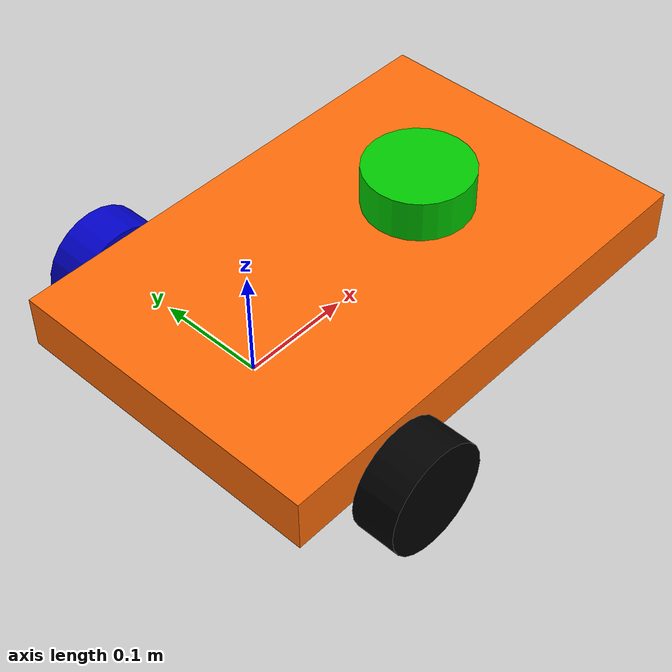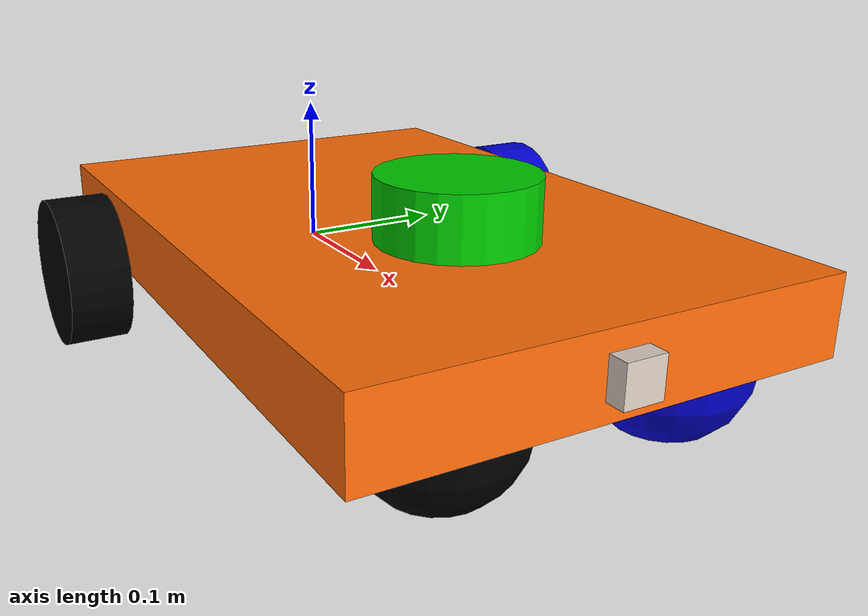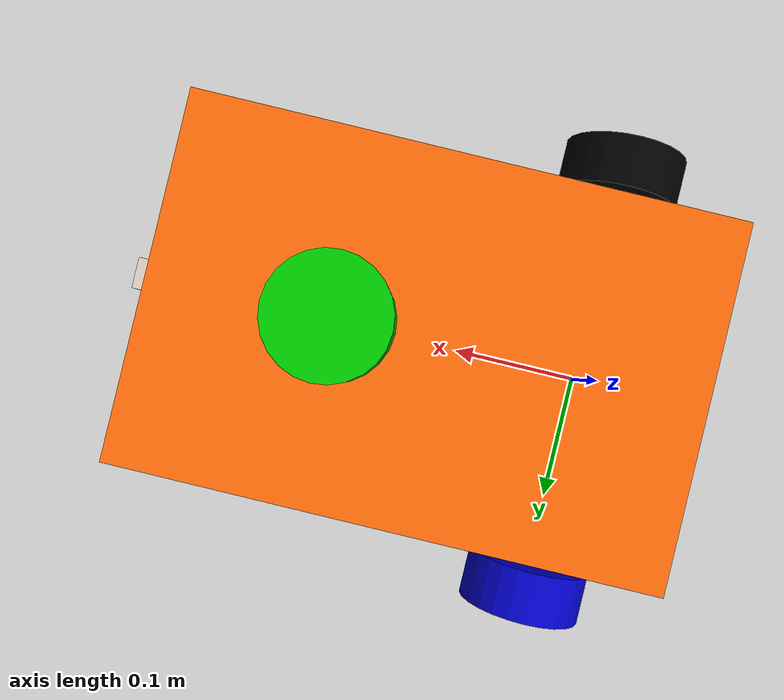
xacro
<?xml version="1.0"?>
<robot xmlns:xacro="http://www.ros.org/wiki/xacro"  name="nav_bot">

    <!-- Robot Structure-->
    <xacro:include filename="structure.xacro"/>

    <!-- Ros2 Control -->
    <xacro:include filename="ros2_control.xacro"/>

    <!-- Lidar-->
    <xacro:include filename="lidar.xacro"/>

    <!-- Camera -->
    <xacro:include filename="camera.xacro"/>

    <!-- Depth Camera -->
    <xacro:include filename="depth_camera.xacro"/>

</robot>

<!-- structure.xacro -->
<robot xmlns:xacro="http://www.ros.org/wiki/xacro">

    <xacro:include filename="macro_inertia.xacro"/>

    <!-- Colors -->

    <material name="black">
        <color rgba="0.0 0.0 0.0 1.0"/>
    </material>

    <material name="dark">
        <color rgba="0.3 0.3 0.3 1.0"/>
    </material>
    <material name="light_black">
        <color rgba="0.4 0.4 0.4 1.0"/>
    </material>

    <material name="blue">
        <color rgba="0.0 0.0 0.8 1.0"/>
    </material>

    <material name="green">
        <color rgba="0.0 0.8 0.0 1.0"/>
    </material>

    <material name="grey">
        <color rgba="0.5 0.5 0.5 1.0"/>
    </material>

    <material name="orange">
        <color rgba="${255/255} ${108/255} ${10/255} 1.0"/>
    </material>

    <material name="brown">
        <color rgba="${222/255} ${207/255} ${195/255} 1.0"/>
    </material>

    <material name="red">
        <color rgba="0.8 0.0 0.0 1.0"/>
    </material>

    <material name="white">
        <color rgba="1.0 1.0 1.0 1.0"/>
    </material>

    <!-- Base Link -->
    <link name="base_link"></link>

    <!-- CHASSIS LINK-->
    <joint name="chassis_joint" type="fixed">
        <parent link ="base_link"/>
        <child link ="chassis"/>
        <origin xyz="-0.1 0 0"/>
    </joint>

    <link name="chassis">
        <visual>
            <origin xyz="0.225 0 0.025"/>
            <geometry>
                <box size="0.45 0.3 0.05"/>
            </geometry>
            <material name="orange"/>
        </visual>
        <collision>
            <origin xyz="0.225 0 0.025"/>
            <geometry>
                <box size="0.45 0.3 0.05"/>
            </geometry>
        </collision>
        <xacro:inertial_box mass="0.5" x="0.45" y="0.3" z="0.05">
            <origin xyz="0.225 0 0.025" rpy="0 0 0"/>
        </xacro:inertial_box>
    </link>

    <!-- LEFT WHEEL LINK -->

    <joint name="left_wheel_joint" type="continuous">
        <parent link="base_link"/>
        <child link="left_wheel"/>
        <origin xyz="0 0.175 0" rpy="-${pi/2} 0 0" />
        <axis xyz="0 0 1"/>
    </joint>

    <link name="left_wheel">
        <visual>
            <geometry>
                <cylinder radius="0.05" length="0.04"/>
            </geometry>
            <material name="blue"/>
        </visual>
        <collision>
            <geometry>
                <cylinder radius="0.05" length="0.04"/>
            </geometry>
        </collision>
        <xacro:inertial_cylinder mass="0.1" length="0.04" radius="0.05">
            <origin xyz="0 0 0" rpy="0 0 0"/>
        </xacro:inertial_cylinder>
    </link>

    <!-- RIGHT WHEEL LINK -->

    <joint name="right_wheel_joint" type="continuous">
        <parent link="base_link"/>
        <child link="right_wheel"/>
        <origin xyz="0 -0.175 0" rpy="${pi/2} 0 0" />
        <axis xyz="0 0 -1"/>
    </joint>

    <link name="right_wheel">
        <visual>
            <geometry>
                <cylinder radius="0.05" length="0.04"/>
            </geometry>
            <material name="black"/>
        </visual>
        <collision>
            <geometry>
                <cylinder radius="0.05" length="0.04"/>
            </geometry>
        </collision>
        <xacro:inertial_cylinder mass="0.1" length="0.04" radius="0.05">
            <origin xyz="0 0 0" rpy="0 0 0"/>
        </xacro:inertial_cylinder>
    </link>

    <!-- LEFT CASTER WHEEL LINK -->

    <joint name="left_caster_wheel_joint" type="fixed">
        <parent link="base_link"/>
        <child link="left_caster_wheel"/>
        <origin xyz="0.3 0.075 0"/>
    </joint>

    <link name="left_caster_wheel">
        <visual>
            <geometry>
                <sphere radius="0.05"/>
            </geometry>
            <material name="blue"/>
        </visual>
        <collision>
            <geometry>
                <sphere radius="0.05"/>
            </geometry>

            <surface>
                <friction>
                    <ode>
                        <mu>0.001</mu>
                        <mu2>0.001</mu2>
                    </ode>
                </friction>
            </surface>

        </collision>
        <xacro:inertial_sphere mass="0.1" radius="0.05">
            <origin xyz="0 0 0" rpy="0 0 0"/>
        </xacro:inertial_sphere>
    </link>

    <gazebo reference="left_caster_wheel">
        <material>Gazebo/Yellow</material>
        <mu1 value="0.001"/>
        <mu2 value="0.001"/>
    </gazebo>

    <!-- RIGHT CASTER WHEEL LINK -->

    <joint name="right_caster_wheel_joint" type="fixed">
        <parent link="base_link"/>
        <child link="right_caster_wheel"/>
        <origin xyz="0.3 -0.075 0"/>
    </joint>

    <link name="right_caster_wheel">
        <visual>
            <geometry>
                <sphere radius="0.05"/>
            </geometry>
            <material name="black"/>
        </visual>
        <collision>
            <geometry>
                <sphere radius="0.05"/>
            </geometry>

            <surface>
                <friction>
                    <ode>
                        <mu>0.001</mu>
                        <mu2>0.001</mu2>
                    </ode>
                </friction>
            </surface>

        </collision>
        <xacro:inertial_sphere mass="0.1" radius="0.05">
            <origin xyz="0 0 0" rpy="0 0 0"/>
        </xacro:inertial_sphere>
    </link>

    <gazebo reference="right_caster_wheel">
        <material>Gazebo/Yellow</material>
        <mu1 value="0.001"/>
        <mu2 value="0.001"/>
    </gazebo>

</robot>

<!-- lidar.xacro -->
<robot xmlns:xacro="http://www.ros.org/wiki/xacro">

    <joint name="lidar_joint" type="fixed">
        <parent link="chassis"/>
        <child link="lidar_body"/>
        <origin xyz="0.3 0 0.05 " rpx="0 0 0"/>
    </joint>

    <link name="lidar_body">
        <visual>
            <origin xyz="0.0 0.0 0.02"/>
            <geometry>
                <cylinder radius="0.05" length="0.04"/>
            </geometry>
            <material name="green"/>
        </visual>
        <collision>
            <geometry>
                <cylinder radius="0.05" length="0.04"/>
            </geometry>
        </collision>
        <xacro:inertial_cylinder mass="0.1" length="0.04" radius="0.05">
            <origin xyz="0 0 0" rpy="0 0 0"/>
        </xacro:inertial_cylinder>
    </link>

    <!-- Gazebo-->
    <gazebo reference="lidar_body">
        <material>Gazebo/Green</material>

        <sensor name="my_lidar" type="gpu_lidar">
            <pose> 0 0 0 0 0 0 </pose>
            <visualize>true</visualize>
            <update_rate>10</update_rate>
            <lidar>
                <scan>
                    <horizontal>
                        <samples>360</samples>
                        <min_angle>-3.14</min_angle>
                        <max_angle>3.14</max_angle>
                    </horizontal>
                </scan>
                <range>
                    <min>0.3</min>
                    <max>10</max>
                </range>
            </lidar>

            <topic>scan</topic>
            <gz_frame_id>lidar_body</gz_frame_id>

        </sensor>
    </gazebo>

</robot>

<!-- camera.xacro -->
<robot xmlns:xacro="http://www.ros.org/wiki/xacro">

    <joint name="camera_joint" type="fixed">
        <parent link="chassis"/>
        <child link="camera_body"/>
        <origin xyz="0.45 0 0.025 " rpx="0 0 0"/>
    </joint>

    <link name="camera_body">
        <visual>
            <origin xyz="0.0 0.0 0.0"/>
            <geometry>
                <box size="0.025 0.025 0.025"/>
            </geometry>
            <material name="brown"/>
        </visual>
        <collision>
            <geometry>
                <box size="0.025 0.025 0.025"/>
            </geometry>
        </collision>
        <xacro:inertial_box mass="0.02" x="0" y="0" z="0">
            <origin xyz="0 0 0" rpy="0 0 0"/>
        </xacro:inertial_box>
    </link>

    <joint name="camera_optical_joint" type="fixed">
        <parent link="camera_body"/>
        <child link="camera_body_optical"/>
        <origin xyz="0 0 0" rpx="${pi/2} 0 ${pi/2}"/>
    </joint>

    <link name="camera_body_optical"></link>

    <!-- Gazebo-->
    <gazebo reference="camera_body">
        <material>Gazebo/Brown</material>

        <sensor name="my_camera" type="camera">
            <pose> 0 0 0 0 0 0 </pose>
            <visualize>true</visualize>
            <update_rate>10</update_rate>
            <camera>
                <camera_info_topic>camera/camera_info</camera_info_topic>
                <horizontal_fov>1.089</horizontal_fov>          <!--In Radians-->
                <image>
                    <format>R8G8B8</format>
                    <width>640</width>
                    <height>480</height>
                </image>
                <clip>
                    <near>0.05</near>
                    <far>8.0</far>
                </clip>
            </camera>

            <topic>camera/image_raw</topic>
            <gz_frame_id>camera_body_optical</gz_frame_id>

        </sensor>
    </gazebo>

</robot>

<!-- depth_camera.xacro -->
<robot xmlns:xacro="http://www.ros.org/wiki/xacro">

    <joint name="depth_camera_joint" type="fixed">
        <parent link="chassis"/>
        <child link="depth_camera_body"/>
        <origin xyz="0.45 0 0.025 " rpx="0 0 0"/>
    </joint>

    <link name="depth_camera_body">
        <visual>
            <origin xyz="0.0 0.0 0.0"/>
            <geometry>
                <box size="0.025 0.025 0.025"/>
            </geometry>
            <material name="brown"/>
        </visual>
        <collision>
            <geometry>
                <box size="0.025 0.025 0.025"/>
            </geometry>
        </collision>
        <xacro:inertial_box mass="0.02" x="0" y="0" z="0">
            <origin xyz="0 0 0" rpy="0 0 0"/>
        </xacro:inertial_box>
    </link>

    <joint name="depth_camera_optical_joint" type="fixed">
        <parent link="depth_camera_body"/>
        <child link="depth_camera_body_optical"/>
        <origin xyz="0 0 0" rpx="${pi/2} 0 ${pi/2}"/>
    </joint>

    <link name="depth_camera_body_optical"></link>

    <!-- Gazebo-->
    <gazebo reference="depth_camera_body">
        <material>Gazebo/Brown</material>

        <sensor name="my_depth_camera" type="depth">
            <pose> 0 0 0 0 0 0 </pose>
            <visualize>true</visualize>
            <update_rate>10</update_rate>
            <camera>
                <camera_info_topic>camera/camera_info</camera_info_topic>
                <horizontal_fov>1.089</horizontal_fov>          <!--In Radians-->
                <image>
                    <format>B8G8R8</format>
                    <width>640</width>
                    <height>480</height>
                </image>
                <clip>
                    <near>0.05</near>
                    <far>8.0</far>
                    <min_depth>0.1</min_depth>
                    <max_depth>10.0</max_depth>
                </clip>
                <min_depth>0.1</min_depth>
                <max_depth>10.0</max_depth>
            </camera>

            <topic>camera/depth/image_raw</topic>
            <gz_frame_id>depth_camera_body_optical</gz_frame_id>

        </sensor>
    </gazebo>

</robot>
